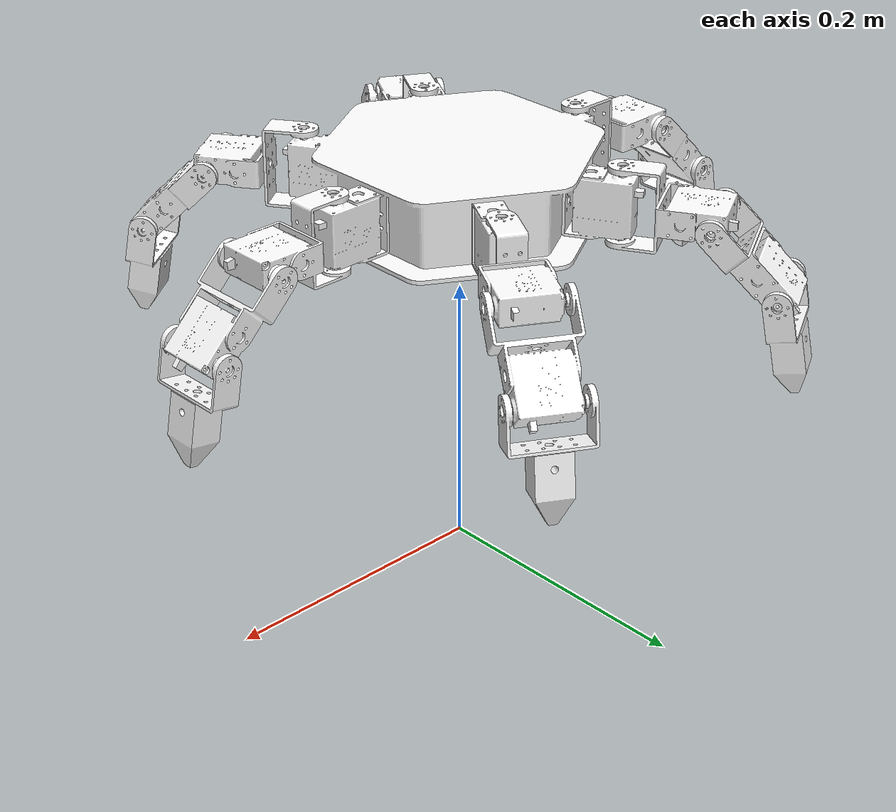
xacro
<?xml version="1.0" encoding="utf-8"?>
<robot
  name="hexbot"
  xmlns:xacro="http://www.ros.org/wiki/xacro">

  <xacro:include filename="macros.xacro" />
  <xacro:base_link_macro />
  <xacro:include filename="legs.xacro" />
  <xacro:include filename="transmissions.xacro" />

  <link
    name="base_footprint">
  </link>
  <joint
    name="base_joint"
    type="fixed">
    <origin
      xyz="0 0 0.25"
      rpy="-1.5708 0 0" />
    <parent
      link="base_footprint" />
    <child
      link="base_link" />
  </joint>

  <gazebo>
    <plugin
      name="gazebo_ros_control"
      filename="libgazebo_ros_control.so">
      <robotNamespace>
        /hexbot
      </robotNamespace>
    </plugin>
  </gazebo>

</robot>

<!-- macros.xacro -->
<robot
  name="hexbot"
  xmlns:xacro="http://www.ros.org/wiki/xacro">

  <xacro:include filename="properties.xacro" />

  <xacro:macro
    name="base_link_macro" >
    <link
      name="base_link">
      <inertial>
        <origin
          xyz="-5.7578E-17 -0.026865 -5.6409E-17"
          rpy="0 0 0" />
        <mass
          value="0.45569" />
        <inertia
          ixx="0.00067888"
          ixy="-1.6518E-19"
          ixz="4.3182E-15"
          iyy="0.0012021"
          iyz="-3.5752E-19"
          izz="0.00067888" />
      </inertial>
      <visual>
        <origin
          xyz="0 0 0"
          rpy="0 0 0" />
        <geometry>
          <mesh
            filename="package://hexbot/meshes/base_link.STL" />
        </geometry>
        <material
          name="">
          <color
            rgba="1 1 1 1" />
        </material>
      </visual>
      <collision>
        <origin
          xyz="0 0 0"
          rpy="0 0 0" />
        <geometry>
          <mesh
            filename="package://hexbot/meshes/base_link.STL" />
        </geometry>
      </collision>
    </link>
  </xacro:macro>

  <xacro:macro
    name="thigh_link_macro"
    params="num" >
    <link
      name="thigh_${num}">
      <inertial>
        <origin
          xyz="0 0 0"
          rpy="0 0 0" />
        <mass
          value="0.0416454946793614" />
        <inertia
          ixx="1.01464532907881E-05"
          ixy="-9.01102352886516E-08"
          ixz="5.83026179577091E-08"
          iyy="9.79635939418219E-06"
          iyz="2.29962924939912E-11"
          izz="1.11686383627586E-05" />
      </inertial>
      <visual>
        <origin
          xyz="0 0 0"
          rpy="0 0 0" />
        <geometry>
          <mesh
            filename="package://hexbot/meshes/thigh.STL" />
        </geometry>
        <material
          name="">
          <color
            rgba="1 1 1 1" />
        </material>
      </visual>
      <collision>
        <origin
          xyz="0 0 0"
          rpy="0 0 0" />
        <geometry>
          <mesh
            filename="package://hexbot/meshes/thigh.STL" />
        </geometry>
      </collision>
    </link>
  </xacro:macro>

  <xacro:macro
    name="shin_link_macro"
    params="num" >
    <link
      name="shin_${num}">
      <inertial>
        <origin
          xyz="0 0 0"
          rpy="0 0 0" />
        <mass
          value="0.0416454939081647" />
        <inertia
          ixx="1.01464529463005E-05"
          ixy="-5.79008683658633E-11"
          ixz="1.48086764022737E-07"
          iyy="1.42061146123856E-05"
          iyz="-6.47788995139536E-12"
          izz="6.7588826935067E-06" />
      </inertial>
      <visual>
        <origin
          xyz="0 0 0"
          rpy="0 0 0" />
        <geometry>
          <mesh
            filename="package://hexbot/meshes/shin.STL" />
        </geometry>
        <material
          name="">
          <color
            rgba="1 1 1 1" />
        </material>
      </visual>
      <collision>
        <origin
          xyz="0 0 0"
          rpy="0 0 0" />
        <geometry>
          <mesh
            filename="package://hexbot/meshes/shin.STL" />
        </geometry>
      </collision>
    </link>
  </xacro:macro>

  <xacro:macro
    name="foot_link_macro"
    params="num" >
    <link
      name="foot_${num}">
      <inertial>
        <origin
          xyz="0 0 0"
          rpy="0 0 0" />
        <mass
          value="0.0264807627517247" />
        <inertia
          ixx="5.16912819060422E-06"
          ixy="-1.91682876233419E-10"
          ixz="5.8167586632756E-08"
          iyy="7.99193660112382E-06"
          iyz="7.92351583964294E-12"
          izz="4.71320299684973E-06" />
      </inertial>
      <visual>
        <origin
          xyz="0 0 0"
          rpy="0 0 0" />
        <geometry>
          <mesh
            filename="package://hexbot/meshes/foot.STL" />
        </geometry>
        <material
          name="">
          <color
            rgba="1 1 1 1" />
        </material>
      </visual>
      <collision>
        <origin
          xyz="0 0 0"
          rpy="0 0 0" />
        <geometry>
          <mesh
            filename="package://hexbot/meshes/foot.STL" />
        </geometry>
      </collision>
    </link>
  </xacro:macro>

  <xacro:macro
    name="thigh_joint_macro"
    params="num *origin">
    <joint
      name="thigh_${num}_joint"
      type="revolute">
      <xacro:insert_block name="origin" />
      <parent
        link="base_link" />
      <child
        link="thigh_${num}" />
      <axis
        xyz="0 0 1" />
      <limit
        lower="${lower_limit}"
        upper="${upper_limit}"
        effort="${effort_limit}"
        velocity="${velocity_limit}" />
    </joint>
  </xacro:macro>

  <xacro:macro
    name="shin_joint_macro"
    params="num *origin">
    <joint
      name="shin_${num}_joint"
      type="revolute">
      <xacro:insert_block name="origin" />
      <parent
        link="thigh_${num}" />
      <child
        link="shin_${num}" />
      <axis
        xyz="0 0 1" />
      <limit
        lower="${lower_limit}"
        upper="${upper_limit}"
        effort="${effort_limit}"
        velocity="${velocity_limit}" />
    </joint>
  </xacro:macro>

  <xacro:macro
    name="foot_joint_macro"
    params="num *origin">
    <joint
      name="foot_${num}_joint"
      type="revolute">
      <xacro:insert_block name="origin" />
      <parent
        link="shin_${num}" />
      <child
        link="foot_${num}" />
      <axis
        xyz="0 0 1" />
      <limit
        lower="${lower_limit}"
        upper="${upper_limit}"
        effort="${effort_limit}"
        velocity="${velocity_limit}" />
    </joint>
  </xacro:macro>

</robot>

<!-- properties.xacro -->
<robot
  name="hexbot"
  xmlns:xacro="http://www.ros.org/wiki/xacro">

  <xacro:property name="lower_limit" value="-1" />
  <xacro:property name="upper_limit" value="1" />
  <xacro:property name="effort_limit" value="1" />
  <xacro:property name="velocity_limit" value="1" />

</robot>

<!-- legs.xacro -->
<robot
  name="hexbot"
  xmlns:xacro="http://www.ros.org/wiki/xacro">

  <xacro:include filename="macros.xacro" />

  <xacro:thigh_link_macro num="1" />
  <xacro:thigh_link_macro num="2" />
  <xacro:thigh_link_macro num="3" />
  <xacro:thigh_link_macro num="4" />
  <xacro:thigh_link_macro num="5" />
  <xacro:thigh_link_macro num="6" />

  <xacro:shin_link_macro num="1" />
  <xacro:shin_link_macro num="2" />
  <xacro:shin_link_macro num="3" />
  <xacro:shin_link_macro num="4" />
  <xacro:shin_link_macro num="5" />
  <xacro:shin_link_macro num="6" />

  <xacro:foot_link_macro num="1" />
  <xacro:foot_link_macro num="2" />
  <xacro:foot_link_macro num="3" />
  <xacro:foot_link_macro num="4" />
  <xacro:foot_link_macro num="5" />
  <xacro:foot_link_macro num="6" />

  <xacro:thigh_joint_macro num="1">
    <origin
      xyz="0.0557 -0.049 0.096475"
      rpy="-1.5708 -1.0472 0" />
  </xacro:thigh_joint_macro>

  <xacro:shin_joint_macro num="1">
    <origin
      xyz="0.0648 0.02575 0.02475"
      rpy="1.5707963267949 -0.785398163397449 0" />
  </xacro:shin_joint_macro>

  <xacro:foot_joint_macro num="1">
    <origin
      xyz="0.0647 -0.001 0"
      rpy="0 0 0.61087" />
  </xacro:foot_joint_macro>

  <xacro:thigh_joint_macro num="2">
    <origin
      xyz="0.111400000000001 -0.051 0"
      rpy="-1.5707963267949 0 0" />
  </xacro:thigh_joint_macro>

  <xacro:shin_joint_macro num="2">
    <origin
      xyz="0.0648 0.02575 0.02675"
      rpy="1.5708 -0.7854 0" />
  </xacro:shin_joint_macro>

  <xacro:foot_joint_macro num="2">
    <origin
      xyz="0.0646999999999998 -0.000999999999999224 0"
      rpy="0 0 0.610865238198015" />
  </xacro:foot_joint_macro>

  <xacro:thigh_joint_macro num="3">
    <origin
      xyz="0.0556999999999999 -0.051 -0.0964752299815872"
      rpy="-1.5707963267949 0.966273587280999 0" />
  </xacro:thigh_joint_macro>

  <xacro:shin_joint_macro num="3">
    <origin
      xyz="0.0648 0.02575 0.02675"
      rpy="1.5708 -0.7854 0" />
  </xacro:shin_joint_macro>

  <xacro:foot_joint_macro num="3">
    <origin
      xyz="0.0647000000000003 -0.00099999999999964 0"
      rpy="0 0 0.610865238198017" />
  </xacro:foot_joint_macro>

  <xacro:thigh_joint_macro num="4">
    <origin
      xyz="-0.0557 -0.051 -0.096475"
      rpy="1.5708 1.0472 -3.1416" />
  </xacro:thigh_joint_macro>

  <xacro:shin_joint_macro num="4">
    <origin
      xyz="0.0647999999999991 0.02575 0.02675"
      rpy="1.5707963267949 -0.785398163397448 0" />
  </xacro:shin_joint_macro>

  <xacro:foot_joint_macro num="4">
    <origin
      xyz="0.0647 -0.001 0"
      rpy="0 0 0.61087" />
  </xacro:foot_joint_macro>

  <xacro:thigh_joint_macro num="5">
    <origin
      xyz="-0.1114 -0.051 0"
      rpy="1.5708 0 3.1416" />
  </xacro:thigh_joint_macro>

  <xacro:shin_joint_macro num="5">
    <origin
      xyz="0.0648 0.02575 0.02675"
      rpy="1.5708 -0.7854 0" />
  </xacro:shin_joint_macro>

  <xacro:foot_joint_macro num="5">
    <origin
      xyz="0.0647000000000012 -0.00100000000000069 0"
      rpy="0 0 0.610865238198015" />
  </xacro:foot_joint_macro>

  <xacro:thigh_joint_macro num="6">
    <origin
      xyz="-0.0557 -0.051 0.096475"
      rpy="1.5708 -1.0472 3.1416" />
  </xacro:thigh_joint_macro>

  <xacro:shin_joint_macro num="6">
    <origin
      xyz="0.0648 0.02575 0.02675"
      rpy="1.5708 -0.7854 0" />
  </xacro:shin_joint_macro>

  <xacro:foot_joint_macro num="6">
    <origin
      xyz="0.0647 -0.001 0"
      rpy="0 0 0.61087" />
  </xacro:foot_joint_macro>
</robot>
